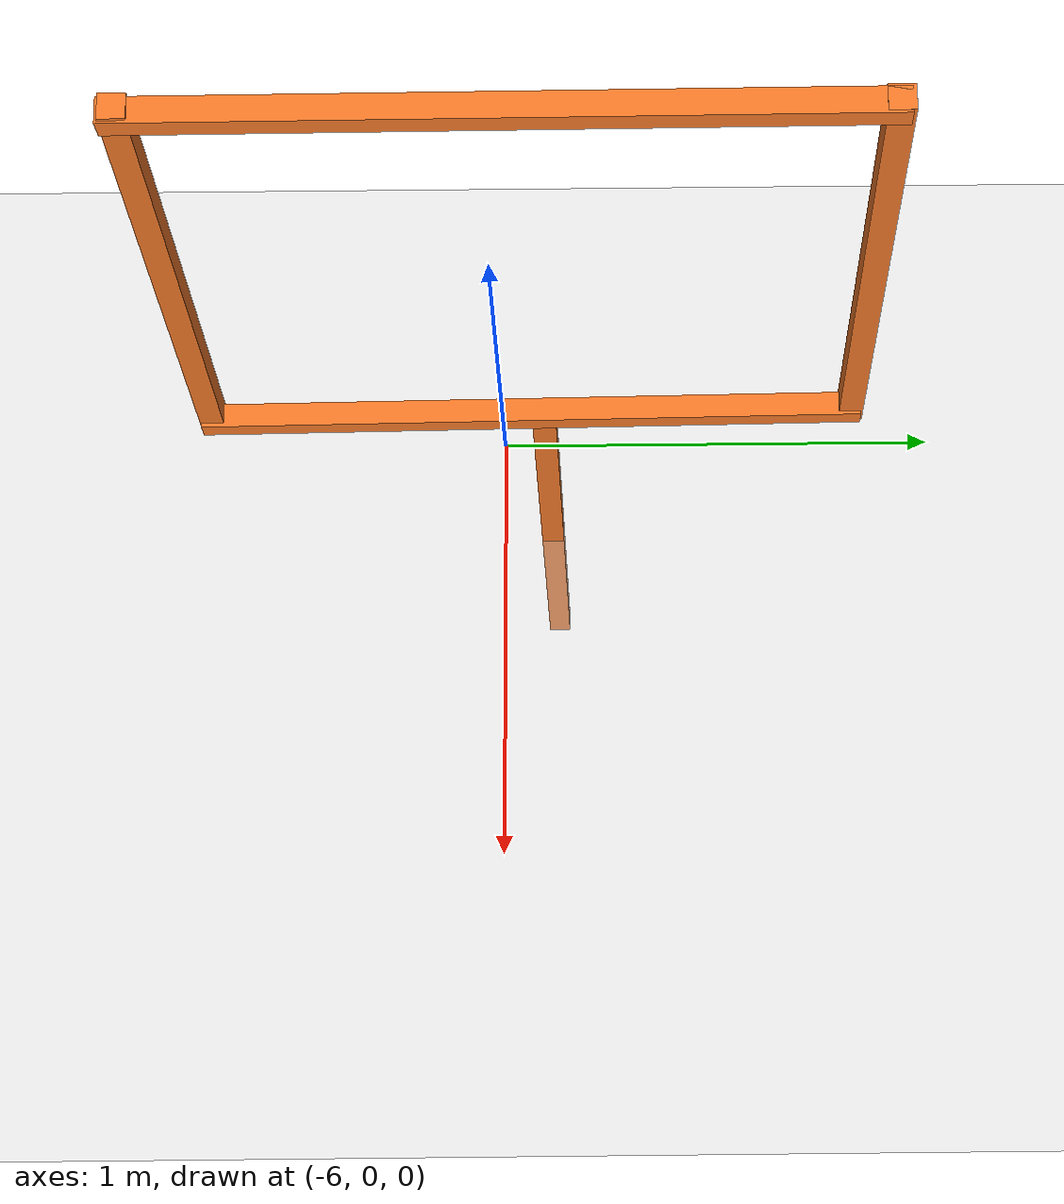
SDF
<sdf version="1.6">
 <world name="default">
  <plugin name="ros_interface_plugin" filename="librotors_gazebo_ros_interface_plugin.so"/>
  <light name="sun" type="directional">
   <pose>0 0 10 0 -0 0</pose>
   <diffuse>0.8 0.8 0.8 1</diffuse>
   <specular>0.2 0.2 0.2 1</specular>
   <attenuation>
    <range>1000</range>
    <constant>0.9</constant>
    <linear>0.01</linear>
    <quadratic>0.001</quadratic>
   </attenuation>
   <direction>-0.5 0.1 -0.9</direction>
  </light>
  <model name="ground_plane">
   <static>1</static>
   <link name="link">
    <collision name="collision">
     <geometry><plane><normal>0 0 1</normal><size>100 100</size></plane></geometry>
     <surface><friction><ode><mu>100</mu><mu2>50</mu2></ode></friction></surface>
    </collision>
    <visual name="visual">
     <cast_shadows>0</cast_shadows>
     <geometry><plane><normal>0 0 1</normal><size>100 100</size></plane></geometry>
     <material>
      <script><uri>file://media/materials/scripts/gazebo.material</uri><name>Gazebo/Grey</name></script>
     </material>
    </visual>
    <velocity_decay><linear>0</linear><angular>0</angular></velocity_decay>
   </link>
  </model>
  <physics name="default_physics" default="0" type="ode">
   <max_step_size>0.004</max_step_size>
   <real_time_factor>1</real_time_factor>
   <real_time_update_rate>200</real_time_update_rate>
  </physics>
  <scene><ambient>0.4 0.4 0.4 1</ambient><background>0.7 0.7 0.7 1</background><shadows>1</shadows></scene>
  <gravity>0 0 -9.8</gravity>
  <magnetic_field>6e-06 2.3e-05 -4.2e-05</magnetic_field>
  <atmosphere type="adiabatic"/>
  <spherical_coordinates>
   <surface_model>EARTH_WGS84</surface_model>
   <latitude_deg>0</latitude_deg>
   <longitude_deg>0</longitude_deg>
   <elevation>0</elevation>
   <heading_deg>0</heading_deg>
  </spherical_coordinates>
  <model name="closed_gate">
   <link name="link_clone_0_clone_1">
    <inertial>
     <mass>1</mass>
     <inertia>
      <ixx>0.166667</ixx>
      <ixy>0</ixy>
      <ixz>0</ixz>
      <iyy>0.166667</iyy>
      <iyz>0</iyz>
      <izz>0.166667</izz>
     </inertia>
    </inertial>
    <pose>1.08198 -0.717602 0.744079 -1.56201 0.04483 -1.56244</pose>
    <visual name="visual">
     <geometry><box><size>0.05 0.05 1.4</size></box></geometry>
     <material>
      <script><name>Gazebo/Grey</name><uri>file://media/materials/scripts/gazebo.material</uri></script>
      <shader type="vertex"><normal_map>__default__</normal_map></shader>
      <ambient>0.976 0.484 0.164 1</ambient>
      <diffuse>0.976 0.484 0.164 1</diffuse>
      <specular>0.01 0.01 0.01 1</specular>
      <emissive>0 0 0 1</emissive>
     </material>
    </visual>
    <collision name="collision">
     <geometry><box><size>0.05 0.05 1.4</size></box></geometry>
     <surface>
      <friction>
       <ode><mu>1</mu><mu2>1</mu2><fdir1>0 0 0</fdir1><slip1>0</slip1><slip2>0</slip2></ode>
       <torsional>
        <coefficient>1</coefficient>
        <patch_radius>0</patch_radius>
        <surface_radius>0</surface_radius>
        <use_patch_radius>1</use_patch_radius>
        <ode><slip>0</slip></ode>
       </torsional>
      </friction>
      <bounce><restitution_coefficient>0</restitution_coefficient><threshold>1e+06</threshold></bounce>
      <contact>
       <collide_without_contact>0</collide_without_contact>
       <collide_without_contact_bitmask>1</collide_without_contact_bitmask>
       <collide_bitmask>1</collide_bitmask>
       <ode>
        <soft_cfm>0</soft_cfm>
        <soft_erp>0.2</soft_erp>
        <kp>1e+13</kp>
        <kd>1</kd>
        <max_vel>0.01</max_vel>
        <min_depth>0</min_depth>
       </ode>
       <bullet>
        <split_impulse>1</split_impulse>
        <split_impulse_penetration_threshold>-0.01</split_impulse_penetration_threshold>
        <soft_cfm>0</soft_cfm>
        <soft_erp>0.2</soft_erp>
        <kp>1e+13</kp>
        <kd>1</kd>
       </bullet>
      </contact>
     </surface>
    </collision>
   </link>
   <link name="link_clone_0_clone_1_clone">
    <inertial>
     <mass>1</mass>
     <inertia>
      <ixx>0.166667</ixx>
      <ixy>0</ixy>
      <ixz>0</ixz>
      <iyy>0.166667</iyy>
      <iyz>0</iyz>
      <izz>0.166667</izz>
     </inertia>
    </inertial>
    <pose>1.07529 -0.719849 2.09328 -1.55888 0.053444 -1.57124</pose>
    <visual name="visual">
     <geometry><box><size>0.05 0.05 1.4</size></box></geometry>
     <material>
      <script><name>Gazebo/Grey</name><uri>file://media/materials/scripts/gazebo.material</uri></script>
      <shader type="vertex"><normal_map>__default__</normal_map></shader>
      <ambient>0.976 0.484 0.164 1</ambient>
      <diffuse>0.976 0.484 0.164 1</diffuse>
      <specular>0.01 0.01 0.01 1</specular>
      <emissive>0 0 0 1</emissive>
     </material>
    </visual>
    <collision name="collision">
     <geometry><box><size>0.05 0.05 1.4</size></box></geometry>
     <surface>
      <friction>
       <ode><mu>1</mu><mu2>1</mu2><fdir1>0 0 0</fdir1><slip1>0</slip1><slip2>0</slip2></ode>
       <torsional>
        <coefficient>1</coefficient>
        <patch_radius>0</patch_radius>
        <surface_radius>0</surface_radius>
        <use_patch_radius>1</use_patch_radius>
        <ode><slip>0</slip></ode>
       </torsional>
      </friction>
      <bounce><restitution_coefficient>0</restitution_coefficient><threshold>1e+06</threshold></bounce>
      <contact>
       <collide_without_contact>0</collide_without_contact>
       <collide_without_contact_bitmask>1</collide_without_contact_bitmask>
       <collide_bitmask>1</collide_bitmask>
       <ode>
        <soft_cfm>0</soft_cfm>
        <soft_erp>0.2</soft_erp>
        <kp>1e+13</kp>
        <kd>1</kd>
        <max_vel>0.01</max_vel>
        <min_depth>0</min_depth>
       </ode>
       <bullet>
        <split_impulse>1</split_impulse>
        <split_impulse_penetration_threshold>-0.01</split_impulse_penetration_threshold>
        <soft_cfm>0</soft_cfm>
        <soft_erp>0.2</soft_erp>
        <kp>1e+13</kp>
        <kd>1</kd>
       </bullet>
      </contact>
     </surface>
    </collision>
   </link>
   <link name="link_clone_1">
    <inertial>
     <mass>1</mass>
     <inertia>
      <ixx>0.166667</ixx>
      <ixy>0</ixy>
      <ixz>0</ixz>
      <iyy>0.166667</iyy>
      <iyz>0</iyz>
      <izz>0.166667</izz>
     </inertia>
    </inertial>
    <pose>1.11167 -0.706269 0.02254 0.008527 -0.003582 0.001077</pose>
    <visual name="visual">
     <geometry><box><size>0.05 0.05 1.4</size></box></geometry>
     <material>
      <script><name>Gazebo/Grey</name><uri>file://media/materials/scripts/gazebo.material</uri></script>
      <shader type="vertex"><normal_map>__default__</normal_map></shader>
      <ambient>0.976 0.484 0.164 1</ambient>
      <diffuse>0.976 0.484 0.164 1</diffuse>
      <specular>0.01 0.01 0.01 1</specular>
      <emissive>0 0 0 1</emissive>
     </material>
    </visual>
    <collision name="collision">
     <geometry><box><size>0.05 0.05 1.4</size></box></geometry>
     <surface>
      <friction>
       <ode><mu>1</mu><mu2>1</mu2><fdir1>0 0 0</fdir1><slip1>0</slip1><slip2>0</slip2></ode>
       <torsional>
        <coefficient>1</coefficient>
        <patch_radius>0</patch_radius>
        <surface_radius>0</surface_radius>
        <use_patch_radius>1</use_patch_radius>
        <ode><slip>0</slip></ode>
       </torsional>
      </friction>
      <bounce><restitution_coefficient>0</restitution_coefficient><threshold>1e+06</threshold></bounce>
      <contact>
       <collide_without_contact>0</collide_without_contact>
       <collide_without_contact_bitmask>1</collide_without_contact_bitmask>
       <collide_bitmask>1</collide_bitmask>
       <ode>
        <soft_cfm>0</soft_cfm>
        <soft_erp>0.2</soft_erp>
        <kp>1e+13</kp>
        <kd>1</kd>
        <max_vel>0.01</max_vel>
        <min_depth>0</min_depth>
       </ode>
       <bullet>
        <split_impulse>1</split_impulse>
        <split_impulse_penetration_threshold>-0.01</split_impulse_penetration_threshold>
        <soft_cfm>0</soft_cfm>
        <soft_erp>0.2</soft_erp>
        <kp>1e+13</kp>
        <kd>1</kd>
       </bullet>
      </contact>
     </surface>
    </collision>
   </link>
   <link name="link_1">
    <inertial>
     <mass>1</mass>
     <inertia>
      <ixx>0.166667</ixx>
      <ixy>0</ixy>
      <ixz>0</ixz>
      <iyy>0.166667</iyy>
      <iyz>0</iyz>
      <izz>0.166667</izz>
     </inertia>
    </inertial>
    <pose>0.404756 -0.715724 1.41623 0 -0 0</pose>
    <visual name="visual">
     <geometry><box><size>0.05 0.05 1.4</size></box></geometry>
     <material>
      <script><name>Gazebo/Grey</name><uri>file://media/materials/scripts/gazebo.material</uri></script>
      <shader type="vertex"><normal_map>__default__</normal_map></shader>
      <ambient>0.976 0.484 0.164 1</ambient>
      <diffuse>0.976 0.484 0.164 1</diffuse>
      <specular>0.01 0.01 0.01 1</specular>
      <emissive>0 0 0 1</emissive>
     </material>
    </visual>
    <collision name="collision">
     <geometry><box><size>0.05 0.05 1.4</size></box></geometry>
     <surface>
      <friction>
       <ode><mu>1</mu><mu2>1</mu2><fdir1>0 0 0</fdir1><slip1>0</slip1><slip2>0</slip2></ode>
       <torsional>
        <coefficient>1</coefficient>
        <patch_radius>0</patch_radius>
        <surface_radius>0</surface_radius>
        <use_patch_radius>1</use_patch_radius>
        <ode><slip>0</slip></ode>
       </torsional>
      </friction>
      <bounce><restitution_coefficient>0</restitution_coefficient><threshold>1e+06</threshold></bounce>
      <contact>
       <collide_without_contact>0</collide_without_contact>
       <collide_without_contact_bitmask>1</collide_without_contact_bitmask>
       <collide_bitmask>1</collide_bitmask>
       <ode>
        <soft_cfm>0</soft_cfm>
        <soft_erp>0.2</soft_erp>
        <kp>1e+13</kp>
        <kd>1</kd>
        <max_vel>0.01</max_vel>
        <min_depth>0</min_depth>
       </ode>
       <bullet>
        <split_impulse>1</split_impulse>
        <split_impulse_penetration_threshold>-0.01</split_impulse_penetration_threshold>
        <soft_cfm>0</soft_cfm>
        <soft_erp>0.2</soft_erp>
        <kp>1e+13</kp>
        <kd>1</kd>
       </bullet>
      </contact>
     </surface>
    </collision>
   </link>
   <link name="link_clone_7">
    <inertial>
     <mass>1</mass>
     <inertia>
      <ixx>0.166667</ixx>
      <ixy>0</ixy>
      <ixz>0</ixz>
      <iyy>0.166667</iyy>
      <iyz>0</iyz>
      <izz>0.166667</izz>
     </inertia>
    </inertial>
    <pose>1.75876 -0.711707 1.42733 0.008527 -0.003582 0.001077</pose>
    <visual name="visual">
     <geometry><box><size>0.05 0.05 1.4</size></box></geometry>
     <material>
      <script><name>Gazebo/Grey</name><uri>file://media/materials/scripts/gazebo.material</uri></script>
      <shader type="vertex"><normal_map>__default__</normal_map></shader>
      <ambient>0.976 0.484 0.164 1</ambient>
      <diffuse>0.976 0.484 0.164 1</diffuse>
      <specular>0.01 0.01 0.01 1</specular>
      <emissive>0 0 0 1</emissive>
     </material>
    </visual>
    <collision name="collision">
     <geometry><box><size>0.05 0.05 1.4</size></box></geometry>
     <surface>
      <friction>
       <ode><mu>1</mu><mu2>1</mu2><fdir1>0 0 0</fdir1><slip1>0</slip1><slip2>0</slip2></ode>
       <torsional>
        <coefficient>1</coefficient>
        <patch_radius>0</patch_radius>
        <surface_radius>0</surface_radius>
        <use_patch_radius>1</use_patch_radius>
        <ode><slip>0</slip></ode>
       </torsional>
      </friction>
      <bounce><restitution_coefficient>0</restitution_coefficient><threshold>1e+06</threshold></bounce>
      <contact>
       <collide_without_contact>0</collide_without_contact>
       <collide_without_contact_bitmask>1</collide_without_contact_bitmask>
       <collide_bitmask>1</collide_bitmask>
       <ode>
        <soft_cfm>0</soft_cfm>
        <soft_erp>0.2</soft_erp>
        <kp>1e+13</kp>
        <kd>1</kd>
        <max_vel>0.01</max_vel>
        <min_depth>0</min_depth>
       </ode>
       <bullet>
        <split_impulse>1</split_impulse>
        <split_impulse_penetration_threshold>-0.01</split_impulse_penetration_threshold>
        <soft_cfm>0</soft_cfm>
        <soft_erp>0.2</soft_erp>
        <kp>1e+13</kp>
        <kd>1</kd>
       </bullet>
      </contact>
     </surface>
    </collision>
   </link>
   <static>1</static>
   <allow_auto_disable>0</allow_auto_disable>
   <pose>-6.49067 -1 0 0 -0 1.5708</pose>
  </model>
  <light name="user_spot_light_0" type="spot">
   <pose>41.119 -31.0097 1 0 -0 0</pose>
   <diffuse>0.5 0.5 0.5 1</diffuse>
   <specular>0.1 0.1 0.1 1</specular>
   <direction>0 0 -1</direction>
   <attenuation>
    <range>20</range>
    <constant>0.5</constant>
    <linear>0.01</linear>
    <quadratic>0.001</quadratic>
   </attenuation>
   <cast_shadows>0</cast_shadows>
   <spot><inner_angle>0.6</inner_angle><outer_angle>1</outer_angle><falloff>1</falloff></spot>
  </light>
  <light name="user_directional_light_0" type="directional">
   <pose>-31.5541 -65.4264 1 0 -0 0</pose>
   <diffuse>0.5 0.5 0.5 1</diffuse>
   <specular>0.1 0.1 0.1 1</specular>
   <direction>0.1 0.1 -0.9</direction>
   <attenuation>
    <range>20</range>
    <constant>0.5</constant>
    <linear>0.01</linear>
    <quadratic>0.001</quadratic>
   </attenuation>
  </light>
  <light name="user_directional_light_1" type="directional">
   <pose>5.84898 -70.0381 1 0 -0 0</pose>
   <diffuse>0.5 0.5 0.5 1</diffuse>
   <specular>0.1 0.1 0.1 1</specular>
   <direction>0.1 0.1 -0.9</direction>
   <attenuation>
    <range>20</range>
    <constant>0.5</constant>
    <linear>0.01</linear>
    <quadratic>0.001</quadratic>
   </attenuation>
  </light>
  <light name="user_directional_light_2" type="directional">
   <pose>-11.7822 22.9848 1 0 -0 0</pose>
   <diffuse>0.5 0.5 0.5 1</diffuse>
   <specular>0.1 0.1 0.1 1</specular>
   <direction>0.1 0.1 -0.9</direction>
   <attenuation>
    <range>20</range>
    <constant>0.5</constant>
    <linear>0.01</linear>
    <quadratic>0.001</quadratic>
   </attenuation>
  </light>
  <light name="user_directional_light_3" type="directional">
   <pose>45.5737 -146.043 1 0 -0 0</pose>
   <diffuse>0.5 0.5 0.5 1</diffuse>
   <specular>0.1 0.1 0.1 1</specular>
   <direction>0.1 0.1 -0.9</direction>
   <attenuation>
    <range>20</range>
    <constant>0.5</constant>
    <linear>0.01</linear>
    <quadratic>0.001</quadratic>
   </attenuation>
  </light>
  <light name="user_directional_light_4" type="directional">
   <pose>-113.933 -243.97 1 0 -0 0</pose>
   <diffuse>0.5 0.5 0.5 1</diffuse>
   <specular>0.1 0.1 0.1 1</specular>
   <direction>0.1 0.1 -0.9</direction>
   <attenuation>
    <range>20</range>
    <constant>0.5</constant>
    <linear>0.01</linear>
    <quadratic>0.001</quadratic>
   </attenuation>
  </light>
  <model name="human_94763_collision_model">
   <pose>-2 0 2  0 0 0</pose>
   <static>true</static>
   <link name="body_link">
    <collision name="body_link"><geometry><box><size>1 1 1</size></box></geometry></collision>
   </link>
  </model>
 </world>
</sdf>
